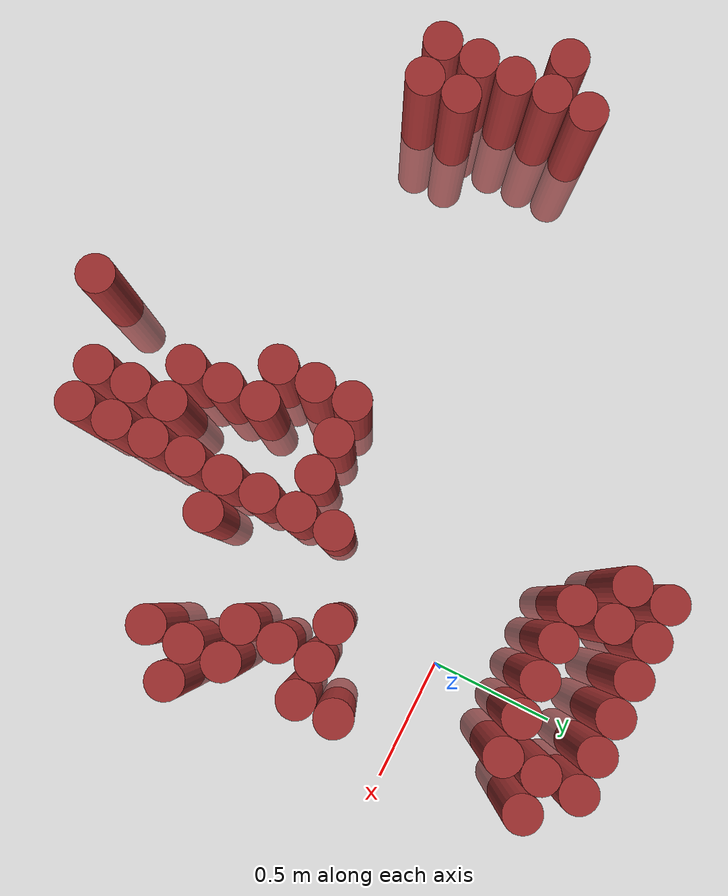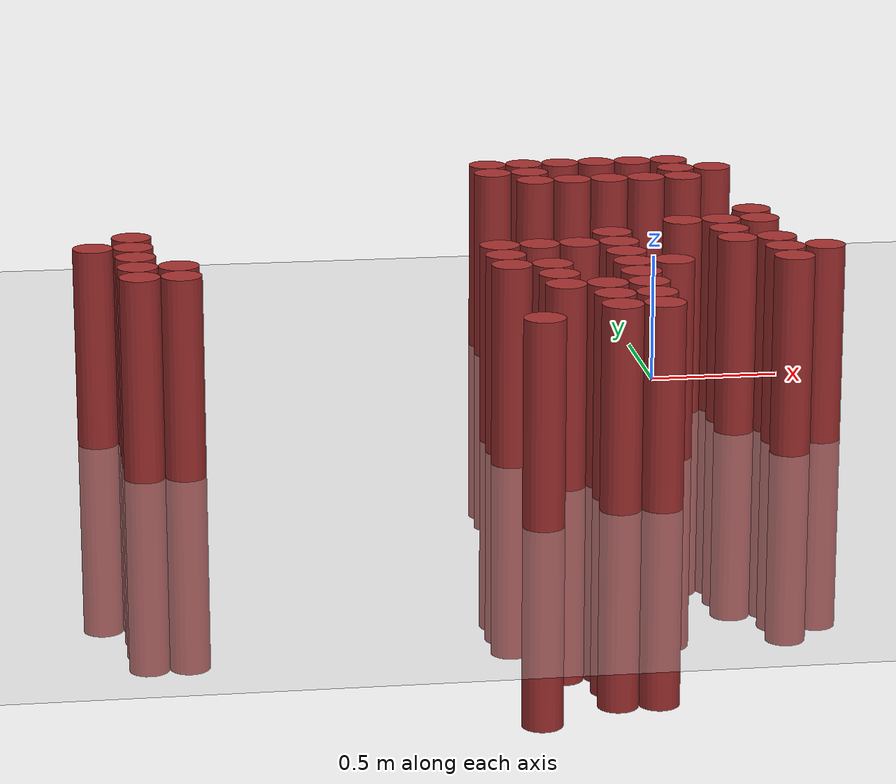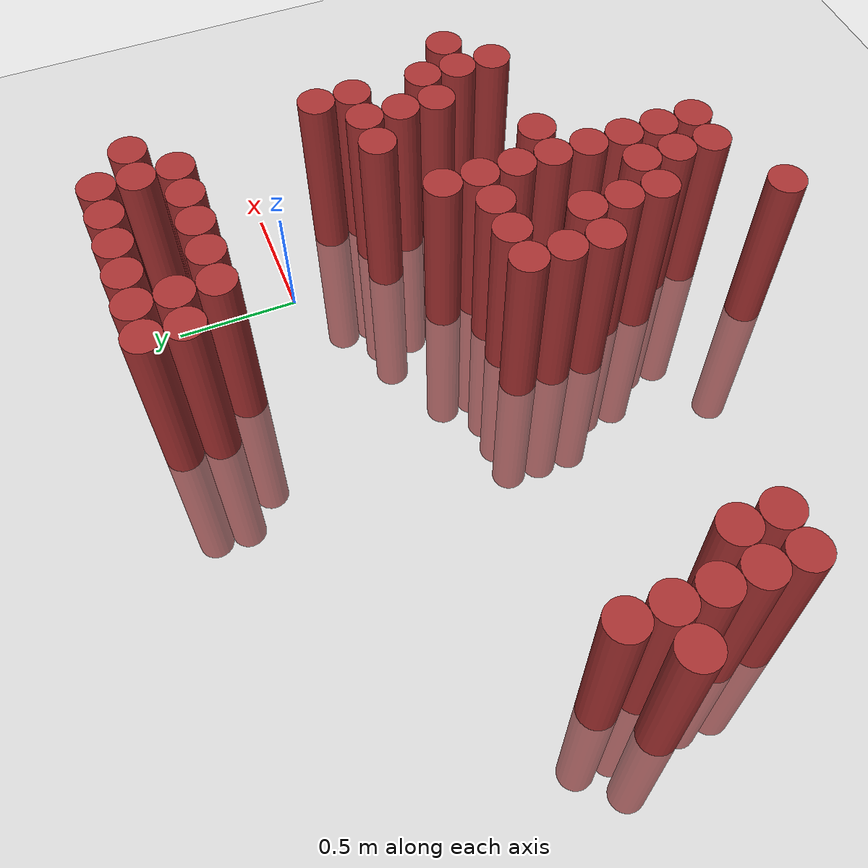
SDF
<sdf version="1.6">
 <world name="default">
  <model name="ground_plane">
   <static>1</static>
   <link name="link">
    <collision name="collision">
     <geometry><plane><normal>0 0 1</normal><size>100 100</size></plane></geometry>
     <surface><friction><ode><mu>100</mu><mu2>50</mu2></ode></friction></surface>
    </collision>
    <visual name="visual">
     <cast_shadows>0</cast_shadows>
     <geometry><plane><normal>0 0 1</normal><size>100 100</size></plane></geometry>
     <material>
      <script><uri>file://media/materials/scripts/gazebo.material</uri><name>Gazebo/Grey</name></script>
     </material>
    </visual>
   </link>
  </model>
  <model name="unit_cylinder_299">
   <static>1</static>
   <pose>-2.225000 -0.575000 0.000000 0.000000 0.000000 0.000000</pose>
   <link name="link">
    <inertial>
     <mass>1</mass>
     <inertia><ixx>0.145833</ixx><ixy>0</ixy><ixz>0</ixz><iyy>0.145833</iyy><iyz>0</iyz><izz>0.125</izz></inertia>
    </inertial>
    <collision name="collision">
     <geometry><cylinder><radius>0.075000</radius><length>1.5</length></cylinder></geometry>
    </collision>
    <visual name="visual">
     <geometry><cylinder><radius>0.075000</radius><length>1.5</length></cylinder></geometry>
     <material>
      <ambient>0.648000 0.192000 0.192000 1</ambient>
      <diffuse>0.648000 0.192000 0.192000 1</diffuse>
     </material>
     <material>
      <script><name>Gazebo/Grey</name><uri>file://media/materials/scripts/gazebo.material</uri></script>
     </material>
    </visual>
   </link>
  </model>
  <model name="unit_cylinder_300">
   <static>1</static>
   <pose>-2.075000 -1.025000 0.000000 0.000000 0.000000 0.000000</pose>
   <link name="link">
    <inertial>
     <mass>1</mass>
     <inertia><ixx>0.145833</ixx><ixy>0</ixy><ixz>0</ixz><iyy>0.145833</iyy><iyz>0</iyz><izz>0.125</izz></inertia>
    </inertial>
    <collision name="collision">
     <geometry><cylinder><radius>0.075000</radius><length>1.5</length></cylinder></geometry>
    </collision>
    <visual name="visual">
     <geometry><cylinder><radius>0.075000</radius><length>1.5</length></cylinder></geometry>
     <material>
      <ambient>0.648000 0.192000 0.192000 1</ambient>
      <diffuse>0.648000 0.192000 0.192000 1</diffuse>
     </material>
     <material>
      <script><name>Gazebo/Grey</name><uri>file://media/materials/scripts/gazebo.material</uri></script>
     </material>
    </visual>
   </link>
  </model>
  <model name="unit_cylinder_301">
   <static>1</static>
   <pose>-2.075000 -0.875000 0.000000 0.000000 0.000000 0.000000</pose>
   <link name="link">
    <inertial>
     <mass>1</mass>
     <inertia><ixx>0.145833</ixx><ixy>0</ixy><ixz>0</ixz><iyy>0.145833</iyy><iyz>0</iyz><izz>0.125</izz></inertia>
    </inertial>
    <collision name="collision">
     <geometry><cylinder><radius>0.075000</radius><length>1.5</length></cylinder></geometry>
    </collision>
    <visual name="visual">
     <geometry><cylinder><radius>0.075000</radius><length>1.5</length></cylinder></geometry>
     <material>
      <ambient>0.648000 0.192000 0.192000 1</ambient>
      <diffuse>0.648000 0.192000 0.192000 1</diffuse>
     </material>
     <material>
      <script><name>Gazebo/Grey</name><uri>file://media/materials/scripts/gazebo.material</uri></script>
     </material>
    </visual>
   </link>
  </model>
  <model name="unit_cylinder_302">
   <static>1</static>
   <pose>-2.075000 -0.725000 0.000000 0.000000 0.000000 0.000000</pose>
   <link name="link">
    <inertial>
     <mass>1</mass>
     <inertia><ixx>0.145833</ixx><ixy>0</ixy><ixz>0</ixz><iyy>0.145833</iyy><iyz>0</iyz><izz>0.125</izz></inertia>
    </inertial>
    <collision name="collision">
     <geometry><cylinder><radius>0.075000</radius><length>1.5</length></cylinder></geometry>
    </collision>
    <visual name="visual">
     <geometry><cylinder><radius>0.075000</radius><length>1.5</length></cylinder></geometry>
     <material>
      <ambient>0.648000 0.192000 0.192000 1</ambient>
      <diffuse>0.648000 0.192000 0.192000 1</diffuse>
     </material>
     <material>
      <script><name>Gazebo/Grey</name><uri>file://media/materials/scripts/gazebo.material</uri></script>
     </material>
    </visual>
   </link>
  </model>
  <model name="unit_cylinder_303">
   <static>1</static>
   <pose>-2.075000 -0.575000 0.000000 0.000000 0.000000 0.000000</pose>
   <link name="link">
    <inertial>
     <mass>1</mass>
     <inertia><ixx>0.145833</ixx><ixy>0</ixy><ixz>0</ixz><iyy>0.145833</iyy><iyz>0</iyz><izz>0.125</izz></inertia>
    </inertial>
    <collision name="collision">
     <geometry><cylinder><radius>0.075000</radius><length>1.5</length></cylinder></geometry>
    </collision>
    <visual name="visual">
     <geometry><cylinder><radius>0.075000</radius><length>1.5</length></cylinder></geometry>
     <material>
      <ambient>0.648000 0.192000 0.192000 1</ambient>
      <diffuse>0.648000 0.192000 0.192000 1</diffuse>
     </material>
     <material>
      <script><name>Gazebo/Grey</name><uri>file://media/materials/scripts/gazebo.material</uri></script>
     </material>
    </visual>
   </link>
  </model>
  <model name="unit_cylinder_304">
   <static>1</static>
   <pose>-2.075000 -0.425000 0.000000 0.000000 0.000000 0.000000</pose>
   <link name="link">
    <inertial>
     <mass>1</mass>
     <inertia><ixx>0.145833</ixx><ixy>0</ixy><ixz>0</ixz><iyy>0.145833</iyy><iyz>0</iyz><izz>0.125</izz></inertia>
    </inertial>
    <collision name="collision">
     <geometry><cylinder><radius>0.075000</radius><length>1.5</length></cylinder></geometry>
    </collision>
    <visual name="visual">
     <geometry><cylinder><radius>0.075000</radius><length>1.5</length></cylinder></geometry>
     <material>
      <ambient>0.648000 0.192000 0.192000 1</ambient>
      <diffuse>0.648000 0.192000 0.192000 1</diffuse>
     </material>
     <material>
      <script><name>Gazebo/Grey</name><uri>file://media/materials/scripts/gazebo.material</uri></script>
     </material>
    </visual>
   </link>
  </model>
  <model name="unit_cylinder_305">
   <static>1</static>
   <pose>-1.925000 -1.025000 0.000000 0.000000 0.000000 0.000000</pose>
   <link name="link">
    <inertial>
     <mass>1</mass>
     <inertia><ixx>0.145833</ixx><ixy>0</ixy><ixz>0</ixz><iyy>0.145833</iyy><iyz>0</iyz><izz>0.125</izz></inertia>
    </inertial>
    <collision name="collision">
     <geometry><cylinder><radius>0.075000</radius><length>1.5</length></cylinder></geometry>
    </collision>
    <visual name="visual">
     <geometry><cylinder><radius>0.075000</radius><length>1.5</length></cylinder></geometry>
     <material>
      <ambient>0.648000 0.192000 0.192000 1</ambient>
      <diffuse>0.648000 0.192000 0.192000 1</diffuse>
     </material>
     <material>
      <script><name>Gazebo/Grey</name><uri>file://media/materials/scripts/gazebo.material</uri></script>
     </material>
    </visual>
   </link>
  </model>
  <model name="unit_cylinder_306">
   <static>1</static>
   <pose>-1.925000 -0.875000 0.000000 0.000000 0.000000 0.000000</pose>
   <link name="link">
    <inertial>
     <mass>1</mass>
     <inertia><ixx>0.145833</ixx><ixy>0</ixy><ixz>0</ixz><iyy>0.145833</iyy><iyz>0</iyz><izz>0.125</izz></inertia>
    </inertial>
    <collision name="collision">
     <geometry><cylinder><radius>0.075000</radius><length>1.5</length></cylinder></geometry>
    </collision>
    <visual name="visual">
     <geometry><cylinder><radius>0.075000</radius><length>1.5</length></cylinder></geometry>
     <material>
      <ambient>0.648000 0.192000 0.192000 1</ambient>
      <diffuse>0.648000 0.192000 0.192000 1</diffuse>
     </material>
     <material>
      <script><name>Gazebo/Grey</name><uri>file://media/materials/scripts/gazebo.material</uri></script>
     </material>
    </visual>
   </link>
  </model>
  <model name="unit_cylinder_315">
   <static>1</static>
   <pose>-0.725000 -1.775000 0.000000 0.000000 0.000000 0.000000</pose>
   <link name="link">
    <inertial>
     <mass>1</mass>
     <inertia><ixx>0.145833</ixx><ixy>0</ixy><ixz>0</ixz><iyy>0.145833</iyy><iyz>0</iyz><izz>0.125</izz></inertia>
    </inertial>
    <collision name="collision">
     <geometry><cylinder><radius>0.075000</radius><length>1.5</length></cylinder></geometry>
    </collision>
    <visual name="visual">
     <geometry><cylinder><radius>0.075000</radius><length>1.5</length></cylinder></geometry>
     <material>
      <ambient>0.648000 0.192000 0.192000 1</ambient>
      <diffuse>0.648000 0.192000 0.192000 1</diffuse>
     </material>
     <material>
      <script><name>Gazebo/Grey</name><uri>file://media/materials/scripts/gazebo.material</uri></script>
     </material>
    </visual>
   </link>
  </model>
  <model name="unit_cylinder_316">
   <static>1</static>
   <pose>-0.725000 -1.025000 0.000000 0.000000 0.000000 0.000000</pose>
   <link name="link">
    <inertial>
     <mass>1</mass>
     <inertia><ixx>0.145833</ixx><ixy>0</ixy><ixz>0</ixz><iyy>0.145833</iyy><iyz>0</iyz><izz>0.125</izz></inertia>
    </inertial>
    <collision name="collision">
     <geometry><cylinder><radius>0.075000</radius><length>1.5</length></cylinder></geometry>
    </collision>
    <visual name="visual">
     <geometry><cylinder><radius>0.075000</radius><length>1.5</length></cylinder></geometry>
     <material>
      <ambient>0.648000 0.192000 0.192000 1</ambient>
      <diffuse>0.648000 0.192000 0.192000 1</diffuse>
     </material>
     <material>
      <script><name>Gazebo/Grey</name><uri>file://media/materials/scripts/gazebo.material</uri></script>
     </material>
    </visual>
   </link>
  </model>
  <model name="unit_cylinder_317">
   <static>1</static>
   <pose>-0.725000 -0.875000 0.000000 0.000000 0.000000 0.000000</pose>
   <link name="link">
    <inertial>
     <mass>1</mass>
     <inertia><ixx>0.145833</ixx><ixy>0</ixy><ixz>0</ixz><iyy>0.145833</iyy><iyz>0</iyz><izz>0.125</izz></inertia>
    </inertial>
    <collision name="collision">
     <geometry><cylinder><radius>0.075000</radius><length>1.5</length></cylinder></geometry>
    </collision>
    <visual name="visual">
     <geometry><cylinder><radius>0.075000</radius><length>1.5</length></cylinder></geometry>
     <material>
      <ambient>0.648000 0.192000 0.192000 1</ambient>
      <diffuse>0.648000 0.192000 0.192000 1</diffuse>
     </material>
     <material>
      <script><name>Gazebo/Grey</name><uri>file://media/materials/scripts/gazebo.material</uri></script>
     </material>
    </visual>
   </link>
  </model>
  <model name="unit_cylinder_318">
   <static>1</static>
   <pose>-0.725000 -0.725000 0.000000 0.000000 0.000000 0.000000</pose>
   <link name="link">
    <inertial>
     <mass>1</mass>
     <inertia><ixx>0.145833</ixx><ixy>0</ixy><ixz>0</ixz><iyy>0.145833</iyy><iyz>0</iyz><izz>0.125</izz></inertia>
    </inertial>
    <collision name="collision">
     <geometry><cylinder><radius>0.075000</radius><length>1.5</length></cylinder></geometry>
    </collision>
    <visual name="visual">
     <geometry><cylinder><radius>0.075000</radius><length>1.5</length></cylinder></geometry>
     <material>
      <ambient>0.648000 0.192000 0.192000 1</ambient>
      <diffuse>0.648000 0.192000 0.192000 1</diffuse>
     </material>
     <material>
      <script><name>Gazebo/Grey</name><uri>file://media/materials/scripts/gazebo.material</uri></script>
     </material>
    </visual>
   </link>
  </model>
  <model name="unit_cylinder_320">
   <static>1</static>
   <pose>-0.575000 -1.325000 0.000000 0.000000 0.000000 0.000000</pose>
   <link name="link">
    <inertial>
     <mass>1</mass>
     <inertia><ixx>0.145833</ixx><ixy>0</ixy><ixz>0</ixz><iyy>0.145833</iyy><iyz>0</iyz><izz>0.125</izz></inertia>
    </inertial>
    <collision name="collision">
     <geometry><cylinder><radius>0.075000</radius><length>1.5</length></cylinder></geometry>
    </collision>
    <visual name="visual">
     <geometry><cylinder><radius>0.075000</radius><length>1.5</length></cylinder></geometry>
     <material>
      <ambient>0.648000 0.192000 0.192000 1</ambient>
      <diffuse>0.648000 0.192000 0.192000 1</diffuse>
     </material>
     <material>
      <script><name>Gazebo/Grey</name><uri>file://media/materials/scripts/gazebo.material</uri></script>
     </material>
    </visual>
   </link>
  </model>
  <model name="unit_cylinder_321">
   <static>1</static>
   <pose>-0.575000 -1.175000 0.000000 0.000000 0.000000 0.000000</pose>
   <link name="link">
    <inertial>
     <mass>1</mass>
     <inertia><ixx>0.145833</ixx><ixy>0</ixy><ixz>0</ixz><iyy>0.145833</iyy><iyz>0</iyz><izz>0.125</izz></inertia>
    </inertial>
    <collision name="collision">
     <geometry><cylinder><radius>0.075000</radius><length>1.5</length></cylinder></geometry>
    </collision>
    <visual name="visual">
     <geometry><cylinder><radius>0.075000</radius><length>1.5</length></cylinder></geometry>
     <material>
      <ambient>0.648000 0.192000 0.192000 1</ambient>
      <diffuse>0.648000 0.192000 0.192000 1</diffuse>
     </material>
     <material>
      <script><name>Gazebo/Grey</name><uri>file://media/materials/scripts/gazebo.material</uri></script>
     </material>
    </visual>
   </link>
  </model>
  <model name="unit_cylinder_322">
   <static>1</static>
   <pose>-0.575000 -1.025000 0.000000 0.000000 0.000000 0.000000</pose>
   <link name="link">
    <inertial>
     <mass>1</mass>
     <inertia><ixx>0.145833</ixx><ixy>0</ixy><ixz>0</ixz><iyy>0.145833</iyy><iyz>0</iyz><izz>0.125</izz></inertia>
    </inertial>
    <collision name="collision">
     <geometry><cylinder><radius>0.075000</radius><length>1.5</length></cylinder></geometry>
    </collision>
    <visual name="visual">
     <geometry><cylinder><radius>0.075000</radius><length>1.5</length></cylinder></geometry>
     <material>
      <ambient>0.648000 0.192000 0.192000 1</ambient>
      <diffuse>0.648000 0.192000 0.192000 1</diffuse>
     </material>
     <material>
      <script><name>Gazebo/Grey</name><uri>file://media/materials/scripts/gazebo.material</uri></script>
     </material>
    </visual>
   </link>
  </model>
  <model name="unit_cylinder_323">
   <static>1</static>
   <pose>-0.575000 -0.725000 0.000000 0.000000 0.000000 0.000000</pose>
   <link name="link">
    <inertial>
     <mass>1</mass>
     <inertia><ixx>0.145833</ixx><ixy>0</ixy><ixz>0</ixz><iyy>0.145833</iyy><iyz>0</iyz><izz>0.125</izz></inertia>
    </inertial>
    <collision name="collision">
     <geometry><cylinder><radius>0.075000</radius><length>1.5</length></cylinder></geometry>
    </collision>
    <visual name="visual">
     <geometry><cylinder><radius>0.075000</radius><length>1.5</length></cylinder></geometry>
     <material>
      <ambient>0.648000 0.192000 0.192000 1</ambient>
      <diffuse>0.648000 0.192000 0.192000 1</diffuse>
     </material>
     <material>
      <script><name>Gazebo/Grey</name><uri>file://media/materials/scripts/gazebo.material</uri></script>
     </material>
    </visual>
   </link>
  </model>
  <model name="unit_cylinder_324">
   <static>1</static>
   <pose>-0.575000 0.475000 0.000000 0.000000 0.000000 0.000000</pose>
   <link name="link">
    <inertial>
     <mass>1</mass>
     <inertia><ixx>0.145833</ixx><ixy>0</ixy><ixz>0</ixz><iyy>0.145833</iyy><iyz>0</iyz><izz>0.125</izz></inertia>
    </inertial>
    <collision name="collision">
     <geometry><cylinder><radius>0.075000</radius><length>1.5</length></cylinder></geometry>
    </collision>
    <visual name="visual">
     <geometry><cylinder><radius>0.075000</radius><length>1.5</length></cylinder></geometry>
     <material>
      <ambient>0.648000 0.192000 0.192000 1</ambient>
      <diffuse>0.648000 0.192000 0.192000 1</diffuse>
     </material>
     <material>
      <script><name>Gazebo/Grey</name><uri>file://media/materials/scripts/gazebo.material</uri></script>
     </material>
    </visual>
   </link>
  </model>
  <model name="unit_cylinder_325">
   <static>1</static>
   <pose>-0.575000 0.625000 0.000000 0.000000 0.000000 0.000000</pose>
   <link name="link">
    <inertial>
     <mass>1</mass>
     <inertia><ixx>0.145833</ixx><ixy>0</ixy><ixz>0</ixz><iyy>0.145833</iyy><iyz>0</iyz><izz>0.125</izz></inertia>
    </inertial>
    <collision name="collision">
     <geometry><cylinder><radius>0.075000</radius><length>1.5</length></cylinder></geometry>
    </collision>
    <visual name="visual">
     <geometry><cylinder><radius>0.075000</radius><length>1.5</length></cylinder></geometry>
     <material>
      <ambient>0.648000 0.192000 0.192000 1</ambient>
      <diffuse>0.648000 0.192000 0.192000 1</diffuse>
     </material>
     <material>
      <script><name>Gazebo/Grey</name><uri>file://media/materials/scripts/gazebo.material</uri></script>
     </material>
    </visual>
   </link>
  </model>
  <model name="unit_cylinder_328">
   <static>1</static>
   <pose>-0.425000 -1.625000 0.000000 0.000000 0.000000 0.000000</pose>
   <link name="link">
    <inertial>
     <mass>1</mass>
     <inertia><ixx>0.145833</ixx><ixy>0</ixy><ixz>0</ixz><iyy>0.145833</iyy><iyz>0</iyz><izz>0.125</izz></inertia>
    </inertial>
    <collision name="collision">
     <geometry><cylinder><radius>0.075000</radius><length>1.5</length></cylinder></geometry>
    </collision>
    <visual name="visual">
     <geometry><cylinder><radius>0.075000</radius><length>1.5</length></cylinder></geometry>
     <material>
      <ambient>0.648000 0.192000 0.192000 1</ambient>
      <diffuse>0.648000 0.192000 0.192000 1</diffuse>
     </material>
     <material>
      <script><name>Gazebo/Grey</name><uri>file://media/materials/scripts/gazebo.material</uri></script>
     </material>
    </visual>
   </link>
  </model>
  <model name="unit_cylinder_329">
   <static>1</static>
   <pose>-0.425000 -1.475000 0.000000 0.000000 0.000000 0.000000</pose>
   <link name="link">
    <inertial>
     <mass>1</mass>
     <inertia><ixx>0.145833</ixx><ixy>0</ixy><ixz>0</ixz><iyy>0.145833</iyy><iyz>0</iyz><izz>0.125</izz></inertia>
    </inertial>
    <collision name="collision">
     <geometry><cylinder><radius>0.075000</radius><length>1.5</length></cylinder></geometry>
    </collision>
    <visual name="visual">
     <geometry><cylinder><radius>0.075000</radius><length>1.5</length></cylinder></geometry>
     <material>
      <ambient>0.648000 0.192000 0.192000 1</ambient>
      <diffuse>0.648000 0.192000 0.192000 1</diffuse>
     </material>
     <material>
      <script><name>Gazebo/Grey</name><uri>file://media/materials/scripts/gazebo.material</uri></script>
     </material>
    </visual>
   </link>
  </model>
  <model name="unit_cylinder_330">
   <static>1</static>
   <pose>-0.425000 -1.325000 0.000000 0.000000 0.000000 0.000000</pose>
   <link name="link">
    <inertial>
     <mass>1</mass>
     <inertia><ixx>0.145833</ixx><ixy>0</ixy><ixz>0</ixz><iyy>0.145833</iyy><iyz>0</iyz><izz>0.125</izz></inertia>
    </inertial>
    <collision name="collision">
     <geometry><cylinder><radius>0.075000</radius><length>1.5</length></cylinder></geometry>
    </collision>
    <visual name="visual">
     <geometry><cylinder><radius>0.075000</radius><length>1.5</length></cylinder></geometry>
     <material>
      <ambient>0.648000 0.192000 0.192000 1</ambient>
      <diffuse>0.648000 0.192000 0.192000 1</diffuse>
     </material>
     <material>
      <script><name>Gazebo/Grey</name><uri>file://media/materials/scripts/gazebo.material</uri></script>
     </material>
    </visual>
   </link>
  </model>
  <model name="unit_cylinder_331">
   <static>1</static>
   <pose>-0.425000 -0.725000 0.000000 0.000000 0.000000 0.000000</pose>
   <link name="link">
    <inertial>
     <mass>1</mass>
     <inertia><ixx>0.145833</ixx><ixy>0</ixy><ixz>0</ixz><iyy>0.145833</iyy><iyz>0</iyz><izz>0.125</izz></inertia>
    </inertial>
    <collision name="collision">
     <geometry><cylinder><radius>0.075000</radius><length>1.5</length></cylinder></geometry>
    </collision>
    <visual name="visual">
     <geometry><cylinder><radius>0.075000</radius><length>1.5</length></cylinder></geometry>
     <material>
      <ambient>0.648000 0.192000 0.192000 1</ambient>
      <diffuse>0.648000 0.192000 0.192000 1</diffuse>
     </material>
     <material>
      <script><name>Gazebo/Grey</name><uri>file://media/materials/scripts/gazebo.material</uri></script>
     </material>
    </visual>
   </link>
  </model>
  <model name="unit_cylinder_332">
   <static>1</static>
   <pose>-0.425000 0.325000 0.000000 0.000000 0.000000 0.000000</pose>
   <link name="link">
    <inertial>
     <mass>1</mass>
     <inertia><ixx>0.145833</ixx><ixy>0</ixy><ixz>0</ixz><iyy>0.145833</iyy><iyz>0</iyz><izz>0.125</izz></inertia>
    </inertial>
    <collision name="collision">
     <geometry><cylinder><radius>0.075000</radius><length>1.5</length></cylinder></geometry>
    </collision>
    <visual name="visual">
     <geometry><cylinder><radius>0.075000</radius><length>1.5</length></cylinder></geometry>
     <material>
      <ambient>0.648000 0.192000 0.192000 1</ambient>
      <diffuse>0.648000 0.192000 0.192000 1</diffuse>
     </material>
     <material>
      <script><name>Gazebo/Grey</name><uri>file://media/materials/scripts/gazebo.material</uri></script>
     </material>
    </visual>
   </link>
  </model>
  <model name="unit_cylinder_333">
   <static>1</static>
   <pose>-0.425000 0.475000 0.000000 0.000000 0.000000 0.000000</pose>
   <link name="link">
    <inertial>
     <mass>1</mass>
     <inertia><ixx>0.145833</ixx><ixy>0</ixy><ixz>0</ixz><iyy>0.145833</iyy><iyz>0</iyz><izz>0.125</izz></inertia>
    </inertial>
    <collision name="collision">
     <geometry><cylinder><radius>0.075000</radius><length>1.5</length></cylinder></geometry>
    </collision>
    <visual name="visual">
     <geometry><cylinder><radius>0.075000</radius><length>1.5</length></cylinder></geometry>
     <material>
      <ambient>0.648000 0.192000 0.192000 1</ambient>
      <diffuse>0.648000 0.192000 0.192000 1</diffuse>
     </material>
     <material>
      <script><name>Gazebo/Grey</name><uri>file://media/materials/scripts/gazebo.material</uri></script>
     </material>
    </visual>
   </link>
  </model>
  <model name="unit_cylinder_334">
   <static>1</static>
   <pose>-0.425000 0.625000 0.000000 0.000000 0.000000 0.000000</pose>
   <link name="link">
    <inertial>
     <mass>1</mass>
     <inertia><ixx>0.145833</ixx><ixy>0</ixy><ixz>0</ixz><iyy>0.145833</iyy><iyz>0</iyz><izz>0.125</izz></inertia>
    </inertial>
    <collision name="collision">
     <geometry><cylinder><radius>0.075000</radius><length>1.5</length></cylinder></geometry>
    </collision>
    <visual name="visual">
     <geometry><cylinder><radius>0.075000</radius><length>1.5</length></cylinder></geometry>
     <material>
      <ambient>0.648000 0.192000 0.192000 1</ambient>
      <diffuse>0.648000 0.192000 0.192000 1</diffuse>
     </material>
     <material>
      <script><name>Gazebo/Grey</name><uri>file://media/materials/scripts/gazebo.material</uri></script>
     </material>
    </visual>
   </link>
  </model>
  <model name="unit_cylinder_342">
   <static>1</static>
   <pose>-0.275000 -1.625000 0.000000 0.000000 0.000000 0.000000</pose>
   <link name="link">
    <inertial>
     <mass>1</mass>
     <inertia><ixx>0.145833</ixx><ixy>0</ixy><ixz>0</ixz><iyy>0.145833</iyy><iyz>0</iyz><izz>0.125</izz></inertia>
    </inertial>
    <collision name="collision">
     <geometry><cylinder><radius>0.075000</radius><length>1.5</length></cylinder></geometry>
    </collision>
    <visual name="visual">
     <geometry><cylinder><radius>0.075000</radius><length>1.5</length></cylinder></geometry>
     <material>
      <ambient>0.648000 0.192000 0.192000 1</ambient>
      <diffuse>0.648000 0.192000 0.192000 1</diffuse>
     </material>
     <material>
      <script><name>Gazebo/Grey</name><uri>file://media/materials/scripts/gazebo.material</uri></script>
     </material>
    </visual>
   </link>
  </model>
  <model name="unit_cylinder_343">
   <static>1</static>
   <pose>-0.275000 -1.475000 0.000000 0.000000 0.000000 0.000000</pose>
   <link name="link">
    <inertial>
     <mass>1</mass>
     <inertia><ixx>0.145833</ixx><ixy>0</ixy><ixz>0</ixz><iyy>0.145833</iyy><iyz>0</iyz><izz>0.125</izz></inertia>
    </inertial>
    <collision name="collision">
     <geometry><cylinder><radius>0.075000</radius><length>1.5</length></cylinder></geometry>
    </collision>
    <visual name="visual">
     <geometry><cylinder><radius>0.075000</radius><length>1.5</length></cylinder></geometry>
     <material>
      <ambient>0.648000 0.192000 0.192000 1</ambient>
      <diffuse>0.648000 0.192000 0.192000 1</diffuse>
     </material>
     <material>
      <script><name>Gazebo/Grey</name><uri>file://media/materials/scripts/gazebo.material</uri></script>
     </material>
    </visual>
   </link>
  </model>
  <model name="unit_cylinder_344">
   <static>1</static>
   <pose>-0.275000 -1.325000 0.000000 0.000000 0.000000 0.000000</pose>
   <link name="link">
    <inertial>
     <mass>1</mass>
     <inertia><ixx>0.145833</ixx><ixy>0</ixy><ixz>0</ixz><iyy>0.145833</iyy><iyz>0</iyz><izz>0.125</izz></inertia>
    </inertial>
    <collision name="collision">
     <geometry><cylinder><radius>0.075000</radius><length>1.5</length></cylinder></geometry>
    </collision>
    <visual name="visual">
     <geometry><cylinder><radius>0.075000</radius><length>1.5</length></cylinder></geometry>
     <material>
      <ambient>0.648000 0.192000 0.192000 1</ambient>
      <diffuse>0.648000 0.192000 0.192000 1</diffuse>
     </material>
     <material>
      <script><name>Gazebo/Grey</name><uri>file://media/materials/scripts/gazebo.material</uri></script>
     </material>
    </visual>
   </link>
  </model>
  <model name="unit_cylinder_345">
   <static>1</static>
   <pose>-0.275000 -1.175000 0.000000 0.000000 0.000000 0.000000</pose>
   <link name="link">
    <inertial>
     <mass>1</mass>
     <inertia><ixx>0.145833</ixx><ixy>0</ixy><ixz>0</ixz><iyy>0.145833</iyy><iyz>0</iyz><izz>0.125</izz></inertia>
    </inertial>
    <collision name="collision">
     <geometry><cylinder><radius>0.075000</radius><length>1.5</length></cylinder></geometry>
    </collision>
    <visual name="visual">
     <geometry><cylinder><radius>0.075000</radius><length>1.5</length></cylinder></geometry>
     <material>
      <ambient>0.648000 0.192000 0.192000 1</ambient>
      <diffuse>0.648000 0.192000 0.192000 1</diffuse>
     </material>
     <material>
      <script><name>Gazebo/Grey</name><uri>file://media/materials/scripts/gazebo.material</uri></script>
     </material>
    </visual>
   </link>
  </model>
  <model name="unit_cylinder_346">
   <static>1</static>
   <pose>-0.275000 -1.025000 0.000000 0.000000 0.000000 0.000000</pose>
   <link name="link">
    <inertial>
     <mass>1</mass>
     <inertia><ixx>0.145833</ixx><ixy>0</ixy><ixz>0</ixz><iyy>0.145833</iyy><iyz>0</iyz><izz>0.125</izz></inertia>
    </inertial>
    <collision name="collision">
     <geometry><cylinder><radius>0.075000</radius><length>1.5</length></cylinder></geometry>
    </collision>
    <visual name="visual">
     <geometry><cylinder><radius>0.075000</radius><length>1.5</length></cylinder></geometry>
     <material>
      <ambient>0.648000 0.192000 0.192000 1</ambient>
      <diffuse>0.648000 0.192000 0.192000 1</diffuse>
     </material>
     <material>
      <script><name>Gazebo/Grey</name><uri>file://media/materials/scripts/gazebo.material</uri></script>
     </material>
    </visual>
   </link>
  </model>
  <model name="unit_cylinder_347">
   <static>1</static>
   <pose>-0.275000 -0.875000 0.000000 0.000000 0.000000 0.000000</pose>
   <link name="link">
    <inertial>
     <mass>1</mass>
     <inertia><ixx>0.145833</ixx><ixy>0</ixy><ixz>0</ixz><iyy>0.145833</iyy><iyz>0</iyz><izz>0.125</izz></inertia>
    </inertial>
    <collision name="collision">
     <geometry><cylinder><radius>0.075000</radius><length>1.5</length></cylinder></geometry>
    </collision>
    <visual name="visual">
     <geometry><cylinder><radius>0.075000</radius><length>1.5</length></cylinder></geometry>
     <material>
      <ambient>0.648000 0.192000 0.192000 1</ambient>
      <diffuse>0.648000 0.192000 0.192000 1</diffuse>
     </material>
     <material>
      <script><name>Gazebo/Grey</name><uri>file://media/materials/scripts/gazebo.material</uri></script>
     </material>
    </visual>
   </link>
  </model>
  <model name="unit_cylinder_348">
   <static>1</static>
   <pose>-0.275000 -0.725000 0.000000 0.000000 0.000000 0.000000</pose>
   <link name="link">
    <inertial>
     <mass>1</mass>
     <inertia><ixx>0.145833</ixx><ixy>0</ixy><ixz>0</ixz><iyy>0.145833</iyy><iyz>0</iyz><izz>0.125</izz></inertia>
    </inertial>
    <collision name="collision">
     <geometry><cylinder><radius>0.075000</radius><length>1.5</length></cylinder></geometry>
    </collision>
    <visual name="visual">
     <geometry><cylinder><radius>0.075000</radius><length>1.5</length></cylinder></geometry>
     <material>
      <ambient>0.648000 0.192000 0.192000 1</ambient>
      <diffuse>0.648000 0.192000 0.192000 1</diffuse>
     </material>
     <material>
      <script><name>Gazebo/Grey</name><uri>file://media/materials/scripts/gazebo.material</uri></script>
     </material>
    </visual>
   </link>
  </model>
  <model name="unit_cylinder_349">
   <static>1</static>
   <pose>-0.275000 -0.575000 0.000000 0.000000 0.000000 0.000000</pose>
   <link name="link">
    <inertial>
     <mass>1</mass>
     <inertia><ixx>0.145833</ixx><ixy>0</ixy><ixz>0</ixz><iyy>0.145833</iyy><iyz>0</iyz><izz>0.125</izz></inertia>
    </inertial>
    <collision name="collision">
     <geometry><cylinder><radius>0.075000</radius><length>1.5</length></cylinder></geometry>
    </collision>
    <visual name="visual">
     <geometry><cylinder><radius>0.075000</radius><length>1.5</length></cylinder></geometry>
     <material>
      <ambient>0.648000 0.192000 0.192000 1</ambient>
      <diffuse>0.648000 0.192000 0.192000 1</diffuse>
     </material>
     <material>
      <script><name>Gazebo/Grey</name><uri>file://media/materials/scripts/gazebo.material</uri></script>
     </material>
    </visual>
   </link>
  </model>
  <model name="unit_cylinder_350">
   <static>1</static>
   <pose>-0.275000 0.325000 0.000000 0.000000 0.000000 0.000000</pose>
   <link name="link">
    <inertial>
     <mass>1</mass>
     <inertia><ixx>0.145833</ixx><ixy>0</ixy><ixz>0</ixz><iyy>0.145833</iyy><iyz>0</iyz><izz>0.125</izz></inertia>
    </inertial>
    <collision name="collision">
     <geometry><cylinder><radius>0.075000</radius><length>1.5</length></cylinder></geometry>
    </collision>
    <visual name="visual">
     <geometry><cylinder><radius>0.075000</radius><length>1.5</length></cylinder></geometry>
     <material>
      <ambient>0.648000 0.192000 0.192000 1</ambient>
      <diffuse>0.648000 0.192000 0.192000 1</diffuse>
     </material>
     <material>
      <script><name>Gazebo/Grey</name><uri>file://media/materials/scripts/gazebo.material</uri></script>
     </material>
    </visual>
   </link>
  </model>
  <model name="unit_cylinder_351">
   <static>1</static>
   <pose>-0.275000 0.625000 0.000000 0.000000 0.000000 0.000000</pose>
   <link name="link">
    <inertial>
     <mass>1</mass>
     <inertia><ixx>0.145833</ixx><ixy>0</ixy><ixz>0</ixz><iyy>0.145833</iyy><iyz>0</iyz><izz>0.125</izz></inertia>
    </inertial>
    <collision name="collision">
     <geometry><cylinder><radius>0.075000</radius><length>1.5</length></cylinder></geometry>
    </collision>
    <visual name="visual">
     <geometry><cylinder><radius>0.075000</radius><length>1.5</length></cylinder></geometry>
     <material>
      <ambient>0.648000 0.192000 0.192000 1</ambient>
      <diffuse>0.648000 0.192000 0.192000 1</diffuse>
     </material>
     <material>
      <script><name>Gazebo/Grey</name><uri>file://media/materials/scripts/gazebo.material</uri></script>
     </material>
    </visual>
   </link>
  </model>
  <model name="unit_cylinder_359">
   <static>1</static>
   <pose>-0.125000 -1.025000 0.000000 0.000000 0.000000 0.000000</pose>
   <link name="link">
    <inertial>
     <mass>1</mass>
     <inertia><ixx>0.145833</ixx><ixy>0</ixy><ixz>0</ixz><iyy>0.145833</iyy><iyz>0</iyz><izz>0.125</izz></inertia>
    </inertial>
    <collision name="collision">
     <geometry><cylinder><radius>0.075000</radius><length>1.5</length></cylinder></geometry>
    </collision>
    <visual name="visual">
     <geometry><cylinder><radius>0.075000</radius><length>1.5</length></cylinder></geometry>
     <material>
      <ambient>0.648000 0.192000 0.192000 1</ambient>
      <diffuse>0.648000 0.192000 0.192000 1</diffuse>
     </material>
     <material>
      <script><name>Gazebo/Grey</name><uri>file://media/materials/scripts/gazebo.material</uri></script>
     </material>
    </visual>
   </link>
  </model>
  <model name="unit_cylinder_360">
   <static>1</static>
   <pose>-0.125000 0.325000 0.000000 0.000000 0.000000 0.000000</pose>
   <link name="link">
    <inertial>
     <mass>1</mass>
     <inertia><ixx>0.145833</ixx><ixy>0</ixy><ixz>0</ixz><iyy>0.145833</iyy><iyz>0</iyz><izz>0.125</izz></inertia>
    </inertial>
    <collision name="collision">
     <geometry><cylinder><radius>0.075000</radius><length>1.5</length></cylinder></geometry>
    </collision>
    <visual name="visual">
     <geometry><cylinder><radius>0.075000</radius><length>1.5</length></cylinder></geometry>
     <material>
      <ambient>0.648000 0.192000 0.192000 1</ambient>
      <diffuse>0.648000 0.192000 0.192000 1</diffuse>
     </material>
     <material>
      <script><name>Gazebo/Grey</name><uri>file://media/materials/scripts/gazebo.material</uri></script>
     </material>
    </visual>
   </link>
  </model>
  <model name="unit_cylinder_361">
   <static>1</static>
   <pose>-0.125000 0.625000 0.000000 0.000000 0.000000 0.000000</pose>
   <link name="link">
    <inertial>
     <mass>1</mass>
     <inertia><ixx>0.145833</ixx><ixy>0</ixy><ixz>0</ixz><iyy>0.145833</iyy><iyz>0</iyz><izz>0.125</izz></inertia>
    </inertial>
    <collision name="collision">
     <geometry><cylinder><radius>0.075000</radius><length>1.5</length></cylinder></geometry>
    </collision>
    <visual name="visual">
     <geometry><cylinder><radius>0.075000</radius><length>1.5</length></cylinder></geometry>
     <material>
      <ambient>0.648000 0.192000 0.192000 1</ambient>
      <diffuse>0.648000 0.192000 0.192000 1</diffuse>
     </material>
     <material>
      <script><name>Gazebo/Grey</name><uri>file://media/materials/scripts/gazebo.material</uri></script>
     </material>
    </visual>
   </link>
  </model>
  <model name="unit_cylinder_366">
   <static>1</static>
   <pose>0.025000 -0.425000 0.000000 0.000000 0.000000 0.000000</pose>
   <link name="link">
    <inertial>
     <mass>1</mass>
     <inertia><ixx>0.145833</ixx><ixy>0</ixy><ixz>0</ixz><iyy>0.145833</iyy><iyz>0</iyz><izz>0.125</izz></inertia>
    </inertial>
    <collision name="collision">
     <geometry><cylinder><radius>0.075000</radius><length>1.5</length></cylinder></geometry>
    </collision>
    <visual name="visual">
     <geometry><cylinder><radius>0.075000</radius><length>1.5</length></cylinder></geometry>
     <material>
      <ambient>0.648000 0.192000 0.192000 1</ambient>
      <diffuse>0.648000 0.192000 0.192000 1</diffuse>
     </material>
     <material>
      <script><name>Gazebo/Grey</name><uri>file://media/materials/scripts/gazebo.material</uri></script>
     </material>
    </visual>
   </link>
  </model>
  <model name="unit_cylinder_367">
   <static>1</static>
   <pose>0.025000 0.325000 0.000000 0.000000 0.000000 0.000000</pose>
   <link name="link">
    <inertial>
     <mass>1</mass>
     <inertia><ixx>0.145833</ixx><ixy>0</ixy><ixz>0</ixz><iyy>0.145833</iyy><iyz>0</iyz><izz>0.125</izz></inertia>
    </inertial>
    <collision name="collision">
     <geometry><cylinder><radius>0.075000</radius><length>1.5</length></cylinder></geometry>
    </collision>
    <visual name="visual">
     <geometry><cylinder><radius>0.075000</radius><length>1.5</length></cylinder></geometry>
     <material>
      <ambient>0.648000 0.192000 0.192000 1</ambient>
      <diffuse>0.648000 0.192000 0.192000 1</diffuse>
     </material>
     <material>
      <script><name>Gazebo/Grey</name><uri>file://media/materials/scripts/gazebo.material</uri></script>
     </material>
    </visual>
   </link>
  </model>
  <model name="unit_cylinder_368">
   <static>1</static>
   <pose>0.025000 0.625000 0.000000 0.000000 0.000000 0.000000</pose>
   <link name="link">
    <inertial>
     <mass>1</mass>
     <inertia><ixx>0.145833</ixx><ixy>0</ixy><ixz>0</ixz><iyy>0.145833</iyy><iyz>0</iyz><izz>0.125</izz></inertia>
    </inertial>
    <collision name="collision">
     <geometry><cylinder><radius>0.075000</radius><length>1.5</length></cylinder></geometry>
    </collision>
    <visual name="visual">
     <geometry><cylinder><radius>0.075000</radius><length>1.5</length></cylinder></geometry>
     <material>
      <ambient>0.648000 0.192000 0.192000 1</ambient>
      <diffuse>0.648000 0.192000 0.192000 1</diffuse>
     </material>
     <material>
      <script><name>Gazebo/Grey</name><uri>file://media/materials/scripts/gazebo.material</uri></script>
     </material>
    </visual>
   </link>
  </model>
  <model name="unit_cylinder_371">
   <static>1</static>
   <pose>0.175000 -0.725000 0.000000 0.000000 0.000000 0.000000</pose>
   <link name="link">
    <inertial>
     <mass>1</mass>
     <inertia><ixx>0.145833</ixx><ixy>0</ixy><ixz>0</ixz><iyy>0.145833</iyy><iyz>0</iyz><izz>0.125</izz></inertia>
    </inertial>
    <collision name="collision">
     <geometry><cylinder><radius>0.075000</radius><length>1.5</length></cylinder></geometry>
    </collision>
    <visual name="visual">
     <geometry><cylinder><radius>0.075000</radius><length>1.5</length></cylinder></geometry>
     <material>
      <ambient>0.648000 0.192000 0.192000 1</ambient>
      <diffuse>0.648000 0.192000 0.192000 1</diffuse>
     </material>
     <material>
      <script><name>Gazebo/Grey</name><uri>file://media/materials/scripts/gazebo.material</uri></script>
     </material>
    </visual>
   </link>
  </model>
  <model name="unit_cylinder_372">
   <static>1</static>
   <pose>0.175000 -0.575000 0.000000 0.000000 0.000000 0.000000</pose>
   <link name="link">
    <inertial>
     <mass>1</mass>
     <inertia><ixx>0.145833</ixx><ixy>0</ixy><ixz>0</ixz><iyy>0.145833</iyy><iyz>0</iyz><izz>0.125</izz></inertia>
    </inertial>
    <collision name="collision">
     <geometry><cylinder><radius>0.075000</radius><length>1.5</length></cylinder></geometry>
    </collision>
    <visual name="visual">
     <geometry><cylinder><radius>0.075000</radius><length>1.5</length></cylinder></geometry>
     <material>
      <ambient>0.648000 0.192000 0.192000 1</ambient>
      <diffuse>0.648000 0.192000 0.192000 1</diffuse>
     </material>
     <material>
      <script><name>Gazebo/Grey</name><uri>file://media/materials/scripts/gazebo.material</uri></script>
     </material>
    </visual>
   </link>
  </model>
  <model name="unit_cylinder_373">
   <static>1</static>
   <pose>0.175000 -0.425000 0.000000 0.000000 0.000000 0.000000</pose>
   <link name="link">
    <inertial>
     <mass>1</mass>
     <inertia><ixx>0.145833</ixx><ixy>0</ixy><ixz>0</ixz><iyy>0.145833</iyy><iyz>0</iyz><izz>0.125</izz></inertia>
    </inertial>
    <collision name="collision">
     <geometry><cylinder><radius>0.075000</radius><length>1.5</length></cylinder></geometry>
    </collision>
    <visual name="visual">
     <geometry><cylinder><radius>0.075000</radius><length>1.5</length></cylinder></geometry>
     <material>
      <ambient>0.648000 0.192000 0.192000 1</ambient>
      <diffuse>0.648000 0.192000 0.192000 1</diffuse>
     </material>
     <material>
      <script><name>Gazebo/Grey</name><uri>file://media/materials/scripts/gazebo.material</uri></script>
     </material>
    </visual>
   </link>
  </model>
  <model name="unit_cylinder_374">
   <static>1</static>
   <pose>0.175000 0.325000 0.000000 0.000000 0.000000 0.000000</pose>
   <link name="link">
    <inertial>
     <mass>1</mass>
     <inertia><ixx>0.145833</ixx><ixy>0</ixy><ixz>0</ixz><iyy>0.145833</iyy><iyz>0</iyz><izz>0.125</izz></inertia>
    </inertial>
    <collision name="collision">
     <geometry><cylinder><radius>0.075000</radius><length>1.5</length></cylinder></geometry>
    </collision>
    <visual name="visual">
     <geometry><cylinder><radius>0.075000</radius><length>1.5</length></cylinder></geometry>
     <material>
      <ambient>0.648000 0.192000 0.192000 1</ambient>
      <diffuse>0.648000 0.192000 0.192000 1</diffuse>
     </material>
     <material>
      <script><name>Gazebo/Grey</name><uri>file://media/materials/scripts/gazebo.material</uri></script>
     </material>
    </visual>
   </link>
  </model>
  <model name="unit_cylinder_375">
   <static>1</static>
   <pose>0.175000 0.475000 0.000000 0.000000 0.000000 0.000000</pose>
   <link name="link">
    <inertial>
     <mass>1</mass>
     <inertia><ixx>0.145833</ixx><ixy>0</ixy><ixz>0</ixz><iyy>0.145833</iyy><iyz>0</iyz><izz>0.125</izz></inertia>
    </inertial>
    <collision name="collision">
     <geometry><cylinder><radius>0.075000</radius><length>1.5</length></cylinder></geometry>
    </collision>
    <visual name="visual">
     <geometry><cylinder><radius>0.075000</radius><length>1.5</length></cylinder></geometry>
     <material>
      <ambient>0.648000 0.192000 0.192000 1</ambient>
      <diffuse>0.648000 0.192000 0.192000 1</diffuse>
     </material>
     <material>
      <script><name>Gazebo/Grey</name><uri>file://media/materials/scripts/gazebo.material</uri></script>
     </material>
    </visual>
   </link>
  </model>
  <model name="unit_cylinder_376">
   <static>1</static>
   <pose>0.175000 0.625000 0.000000 0.000000 0.000000 0.000000</pose>
   <link name="link">
    <inertial>
     <mass>1</mass>
     <inertia><ixx>0.145833</ixx><ixy>0</ixy><ixz>0</ixz><iyy>0.145833</iyy><iyz>0</iyz><izz>0.125</izz></inertia>
    </inertial>
    <collision name="collision">
     <geometry><cylinder><radius>0.075000</radius><length>1.5</length></cylinder></geometry>
    </collision>
    <visual name="visual">
     <geometry><cylinder><radius>0.075000</radius><length>1.5</length></cylinder></geometry>
     <material>
      <ambient>0.648000 0.192000 0.192000 1</ambient>
      <diffuse>0.648000 0.192000 0.192000 1</diffuse>
     </material>
     <material>
      <script><name>Gazebo/Grey</name><uri>file://media/materials/scripts/gazebo.material</uri></script>
     </material>
    </visual>
   </link>
  </model>
  <model name="unit_cylinder_380">
   <static>1</static>
   <pose>0.325000 -1.025000 0.000000 0.000000 0.000000 0.000000</pose>
   <link name="link">
    <inertial>
     <mass>1</mass>
     <inertia><ixx>0.145833</ixx><ixy>0</ixy><ixz>0</ixz><iyy>0.145833</iyy><iyz>0</iyz><izz>0.125</izz></inertia>
    </inertial>
    <collision name="collision">
     <geometry><cylinder><radius>0.075000</radius><length>1.5</length></cylinder></geometry>
    </collision>
    <visual name="visual">
     <geometry><cylinder><radius>0.075000</radius><length>1.5</length></cylinder></geometry>
     <material>
      <ambient>0.648000 0.192000 0.192000 1</ambient>
      <diffuse>0.648000 0.192000 0.192000 1</diffuse>
     </material>
     <material>
      <script><name>Gazebo/Grey</name><uri>file://media/materials/scripts/gazebo.material</uri></script>
     </material>
    </visual>
   </link>
  </model>
  <model name="unit_cylinder_381">
   <static>1</static>
   <pose>0.325000 -0.875000 0.000000 0.000000 0.000000 0.000000</pose>
   <link name="link">
    <inertial>
     <mass>1</mass>
     <inertia><ixx>0.145833</ixx><ixy>0</ixy><ixz>0</ixz><iyy>0.145833</iyy><iyz>0</iyz><izz>0.125</izz></inertia>
    </inertial>
    <collision name="collision">
     <geometry><cylinder><radius>0.075000</radius><length>1.5</length></cylinder></geometry>
    </collision>
    <visual name="visual">
     <geometry><cylinder><radius>0.075000</radius><length>1.5</length></cylinder></geometry>
     <material>
      <ambient>0.648000 0.192000 0.192000 1</ambient>
      <diffuse>0.648000 0.192000 0.192000 1</diffuse>
     </material>
     <material>
      <script><name>Gazebo/Grey</name><uri>file://media/materials/scripts/gazebo.material</uri></script>
     </material>
    </visual>
   </link>
  </model>
  <model name="unit_cylinder_382">
   <static>1</static>
   <pose>0.325000 -0.725000 0.000000 0.000000 0.000000 0.000000</pose>
   <link name="link">
    <inertial>
     <mass>1</mass>
     <inertia><ixx>0.145833</ixx><ixy>0</ixy><ixz>0</ixz><iyy>0.145833</iyy><iyz>0</iyz><izz>0.125</izz></inertia>
    </inertial>
    <collision name="collision">
     <geometry><cylinder><radius>0.075000</radius><length>1.5</length></cylinder></geometry>
    </collision>
    <visual name="visual">
     <geometry><cylinder><radius>0.075000</radius><length>1.5</length></cylinder></geometry>
     <material>
      <ambient>0.648000 0.192000 0.192000 1</ambient>
      <diffuse>0.648000 0.192000 0.192000 1</diffuse>
     </material>
     <material>
      <script><name>Gazebo/Grey</name><uri>file://media/materials/scripts/gazebo.material</uri></script>
     </material>
    </visual>
   </link>
  </model>
  <model name="unit_cylinder_383">
   <static>1</static>
   <pose>0.325000 -0.425000 0.000000 0.000000 0.000000 0.000000</pose>
   <link name="link">
    <inertial>
     <mass>1</mass>
     <inertia><ixx>0.145833</ixx><ixy>0</ixy><ixz>0</ixz><iyy>0.145833</iyy><iyz>0</iyz><izz>0.125</izz></inertia>
    </inertial>
    <collision name="collision">
     <geometry><cylinder><radius>0.075000</radius><length>1.5</length></cylinder></geometry>
    </collision>
    <visual name="visual">
     <geometry><cylinder><radius>0.075000</radius><length>1.5</length></cylinder></geometry>
     <material>
      <ambient>0.648000 0.192000 0.192000 1</ambient>
      <diffuse>0.648000 0.192000 0.192000 1</diffuse>
     </material>
     <material>
      <script><name>Gazebo/Grey</name><uri>file://media/materials/scripts/gazebo.material</uri></script>
     </material>
    </visual>
   </link>
  </model>
  <model name="unit_cylinder_384">
   <static>1</static>
   <pose>0.325000 -0.275000 0.000000 0.000000 0.000000 0.000000</pose>
   <link name="link">
    <inertial>
     <mass>1</mass>
     <inertia><ixx>0.145833</ixx><ixy>0</ixy><ixz>0</ixz><iyy>0.145833</iyy><iyz>0</iyz><izz>0.125</izz></inertia>
    </inertial>
    <collision name="collision">
     <geometry><cylinder><radius>0.075000</radius><length>1.5</length></cylinder></geometry>
    </collision>
    <visual name="visual">
     <geometry><cylinder><radius>0.075000</radius><length>1.5</length></cylinder></geometry>
     <material>
      <ambient>0.648000 0.192000 0.192000 1</ambient>
      <diffuse>0.648000 0.192000 0.192000 1</diffuse>
     </material>
     <material>
      <script><name>Gazebo/Grey</name><uri>file://media/materials/scripts/gazebo.material</uri></script>
     </material>
    </visual>
   </link>
  </model>
  <model name="unit_cylinder_385">
   <static>1</static>
   <pose>0.325000 0.475000 0.000000 0.000000 0.000000 0.000000</pose>
   <link name="link">
    <inertial>
     <mass>1</mass>
     <inertia><ixx>0.145833</ixx><ixy>0</ixy><ixz>0</ixz><iyy>0.145833</iyy><iyz>0</iyz><izz>0.125</izz></inertia>
    </inertial>
    <collision name="collision">
     <geometry><cylinder><radius>0.075000</radius><length>1.5</length></cylinder></geometry>
    </collision>
    <visual name="visual">
     <geometry><cylinder><radius>0.075000</radius><length>1.5</length></cylinder></geometry>
     <material>
      <ambient>0.648000 0.192000 0.192000 1</ambient>
      <diffuse>0.648000 0.192000 0.192000 1</diffuse>
     </material>
     <material>
      <script><name>Gazebo/Grey</name><uri>file://media/materials/scripts/gazebo.material</uri></script>
     </material>
    </visual>
   </link>
  </model>
  <model name="unit_cylinder_389">
   <static>1</static>
   <pose>0.475000 -0.875000 0.000000 0.000000 0.000000 0.000000</pose>
   <link name="link">
    <inertial>
     <mass>1</mass>
     <inertia><ixx>0.145833</ixx><ixy>0</ixy><ixz>0</ixz><iyy>0.145833</iyy><iyz>0</iyz><izz>0.125</izz></inertia>
    </inertial>
    <collision name="collision">
     <geometry><cylinder><radius>0.075000</radius><length>1.5</length></cylinder></geometry>
    </collision>
    <visual name="visual">
     <geometry><cylinder><radius>0.075000</radius><length>1.5</length></cylinder></geometry>
     <material>
      <ambient>0.648000 0.192000 0.192000 1</ambient>
      <diffuse>0.648000 0.192000 0.192000 1</diffuse>
     </material>
     <material>
      <script><name>Gazebo/Grey</name><uri>file://media/materials/scripts/gazebo.material</uri></script>
     </material>
    </visual>
   </link>
  </model>
 </world>
</sdf>
